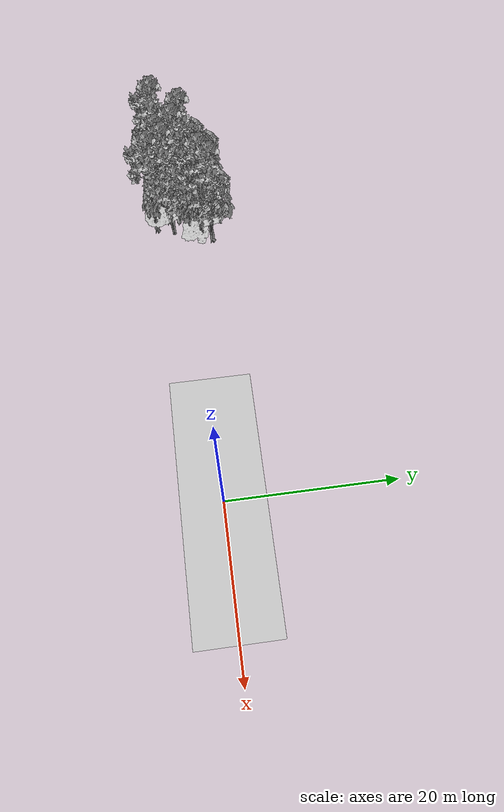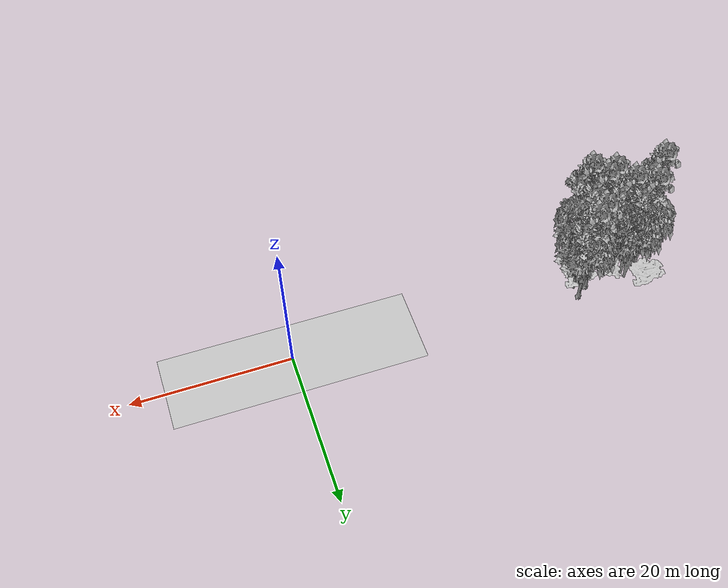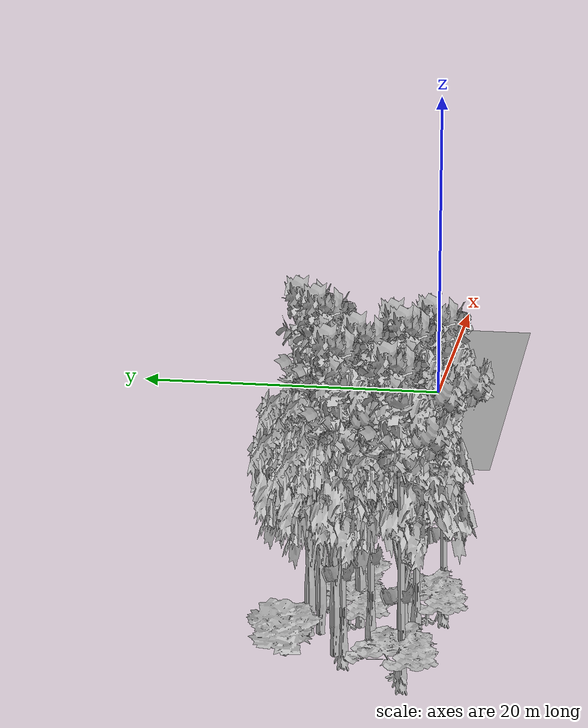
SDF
<sdf version="1.7">
 <world name="default">
  <model name="ground_plane">
   <static>1</static>
   <link name="link">
    <collision name="collision">
     <pose>-50 0 0 0 -0 0</pose>
     <geometry><plane><normal>0 0 1</normal><size>100 100</size></plane></geometry>
     <surface><contact><ode><min_depth>0.01</min_depth><max_vel>0</max_vel></ode></contact></surface>
    </collision>
    <visual name="grass">
     <cast_shadows>0</cast_shadows>
     <geometry>
      <mesh>
       <scale>0.5814285714285714 0.18142857142857144 0.1</scale>
       <uri>file://grass_plane/meshes/grass_plane.dae</uri>
      </mesh>
     </geometry>
    </visual>
   </link>
  </model>
  <model name="Tree 6">
   <static>1</static>
   <pose>-37.887973601087715 1.3199146387458143 0 1.57079 -0 0</pose>
   <link name="link">
    <collision name="collision">
     <geometry><mesh><scale>3.5 5 3.5</scale><uri>model://tree_2/meshes/tree_2.obj</uri></mesh></geometry>
    </collision>
    <visual name="visual">
     <geometry><mesh><scale>3.5 5 3.5</scale><uri>model://tree_2/meshes/tree_2.obj</uri></mesh></geometry>
    </visual>
   </link>
  </model>
  <model name="Tree 31">
   <static>1</static>
   <pose>-43.290989155444414 1.189740722010601 0 1.57079 -0 0</pose>
   <link name="link">
    <collision name="collision">
     <geometry><mesh><scale>3.5 5 3.5</scale><uri>model://tree_2/meshes/tree_2.obj</uri></mesh></geometry>
    </collision>
    <visual name="visual">
     <geometry><mesh><scale>3.5 5 3.5</scale><uri>model://tree_2/meshes/tree_2.obj</uri></mesh></geometry>
    </visual>
   </link>
  </model>
  <model name="Tree 47">
   <static>1</static>
   <pose>-38.29400343661959 1.3634647451998596 0 1.57079 -0 0</pose>
   <link name="link">
    <collision name="collision">
     <geometry><mesh><scale>3.5 5 3.5</scale><uri>model://tree_9/meshes/tree_9.obj</uri></mesh></geometry>
    </collision>
    <visual name="visual">
     <geometry><mesh><scale>3.5 5 3.5</scale><uri>model://tree_9/meshes/tree_9.obj</uri></mesh></geometry>
    </visual>
   </link>
  </model>
  <model name="Tree 66">
   <static>1</static>
   <pose>-41.888041818027965 -3.5551852384522213 0 1.57079 -0 0</pose>
   <link name="link">
    <collision name="collision">
     <geometry><mesh><scale>3.5 5 3.5</scale><uri>model://tree_9/meshes/tree_9.obj</uri></mesh></geometry>
    </collision>
    <visual name="visual">
     <geometry><mesh><scale>3.5 5 3.5</scale><uri>model://tree_9/meshes/tree_9.obj</uri></mesh></geometry>
    </visual>
   </link>
  </model>
  <model name="Tree 94">
   <static>1</static>
   <pose>-48.39368440894646 -3.6012545829023885 0 1.57079 -0 0</pose>
   <link name="link">
    <collision name="collision">
     <geometry><mesh><scale>3.5 5 3.5</scale><uri>model://tree_9/meshes/tree_9.obj</uri></mesh></geometry>
    </collision>
    <visual name="visual">
     <geometry><mesh><scale>3.5 5 3.5</scale><uri>model://tree_9/meshes/tree_9.obj</uri></mesh></geometry>
    </visual>
   </link>
  </model>
  <model name="Tree 122">
   <static>1</static>
   <pose>-37.73329666970326 0.07648108124822883 0 1.57079 -0 0</pose>
   <link name="link">
    <collision name="collision">
     <geometry><mesh><scale>3 2 3</scale><uri>model://tree_3/meshes/tree_3.obj</uri></mesh></geometry>
    </collision>
    <visual name="visual">
     <geometry><mesh><scale>3 2 3</scale><uri>model://tree_3/meshes/tree_3.obj</uri></mesh></geometry>
    </visual>
   </link>
  </model>
  <model name="Tree 237">
   <static>1</static>
   <pose>-36.811732902429696 2.518052424741544 0 1.57079 -0 0</pose>
   <link name="link">
    <collision name="collision">
     <geometry><mesh><scale>3.5 5 3.5</scale><uri>model://tree_9/meshes/tree_9.obj</uri></mesh></geometry>
    </collision>
    <visual name="visual">
     <geometry><mesh><scale>3.5 5 3.5</scale><uri>model://tree_9/meshes/tree_9.obj</uri></mesh></geometry>
    </visual>
   </link>
  </model>
  <model name="Tree 245">
   <static>1</static>
   <pose>-46.04668598661531 0.04497765726208236 0 1.57079 -0 0</pose>
   <link name="link">
    <collision name="collision">
     <geometry><mesh><scale>3.5 5 3.5</scale><uri>model://tree_2/meshes/tree_2.obj</uri></mesh></geometry>
    </collision>
    <visual name="visual">
     <geometry><mesh><scale>3.5 5 3.5</scale><uri>model://tree_2/meshes/tree_2.obj</uri></mesh></geometry>
    </visual>
   </link>
  </model>
  <model name="Tree 247">
   <static>1</static>
   <pose>-39.41444467417304 -4.6869506630965 0 1.57079 -0 0</pose>
   <link name="link">
    <collision name="collision">
     <geometry><mesh><scale>3.5 5 3.5</scale><uri>model://tree_9/meshes/tree_9.obj</uri></mesh></geometry>
    </collision>
    <visual name="visual">
     <geometry><mesh><scale>3.5 5 3.5</scale><uri>model://tree_9/meshes/tree_9.obj</uri></mesh></geometry>
    </visual>
   </link>
  </model>
  <model name="Tree 254">
   <static>1</static>
   <pose>-36.77675199047252 1.221827557060955 0 1.57079 -0 0</pose>
   <link name="link">
    <collision name="collision">
     <geometry><mesh><scale>3.5 5 3.5</scale><uri>model://tree_2/meshes/tree_2.obj</uri></mesh></geometry>
    </collision>
    <visual name="visual">
     <geometry><mesh><scale>3.5 5 3.5</scale><uri>model://tree_2/meshes/tree_2.obj</uri></mesh></geometry>
    </visual>
   </link>
  </model>
  <model name="Tree 270">
   <static>1</static>
   <pose>-43.61109015363 1.7033768670879788 0 1.57079 -0 0</pose>
   <link name="link">
    <collision name="collision">
     <geometry><mesh><scale>3.5 5 3.5</scale><uri>model://tree_2/meshes/tree_2.obj</uri></mesh></geometry>
    </collision>
    <visual name="visual">
     <geometry><mesh><scale>3.5 5 3.5</scale><uri>model://tree_2/meshes/tree_2.obj</uri></mesh></geometry>
    </visual>
   </link>
  </model>
  <model name="Tree 290">
   <static>1</static>
   <pose>-43.39874230633518 -1.4171953327888218 0 1.57079 -0 0</pose>
   <link name="link">
    <collision name="collision">
     <geometry><mesh><scale>3.5 5 3.5</scale><uri>model://tree_9/meshes/tree_9.obj</uri></mesh></geometry>
    </collision>
    <visual name="visual">
     <geometry><mesh><scale>3.5 5 3.5</scale><uri>model://tree_9/meshes/tree_9.obj</uri></mesh></geometry>
    </visual>
   </link>
  </model>
  <model name="Tree 304">
   <static>1</static>
   <pose>-38.234874973432895 -2.4432896593487943 0 1.57079 -0 0</pose>
   <link name="link">
    <collision name="collision">
     <geometry><mesh><scale>3.5 5 3.5</scale><uri>model://tree_2/meshes/tree_2.obj</uri></mesh></geometry>
    </collision>
    <visual name="visual">
     <geometry><mesh><scale>3.5 5 3.5</scale><uri>model://tree_2/meshes/tree_2.obj</uri></mesh></geometry>
    </visual>
   </link>
  </model>
  <model name="Tree 323">
   <static>1</static>
   <pose>-45.98933967668304 2.575135953180368 0 1.57079 -0 0</pose>
   <link name="link">
    <collision name="collision">
     <geometry><mesh><scale>3 2 3</scale><uri>model://tree_3/meshes/tree_3.obj</uri></mesh></geometry>
    </collision>
    <visual name="visual">
     <geometry><mesh><scale>3 2 3</scale><uri>model://tree_3/meshes/tree_3.obj</uri></mesh></geometry>
    </visual>
   </link>
  </model>
  <model name="Tree 352">
   <static>1</static>
   <pose>-36.99148450877887 2.4423195842639096 0 1.57079 -0 0</pose>
   <link name="link">
    <collision name="collision">
     <geometry><mesh><scale>3.5 5 3.5</scale><uri>model://tree_2/meshes/tree_2.obj</uri></mesh></geometry>
    </collision>
    <visual name="visual">
     <geometry><mesh><scale>3.5 5 3.5</scale><uri>model://tree_2/meshes/tree_2.obj</uri></mesh></geometry>
    </visual>
   </link>
  </model>
  <model name="Tree 362">
   <static>1</static>
   <pose>-41.95352702738886 -0.08945312186084564 0 1.57079 -0 0</pose>
   <link name="link">
    <collision name="collision">
     <geometry><mesh><scale>4 2.5 4</scale><uri>model://tree_1/meshes/tree_1.obj</uri></mesh></geometry>
    </collision>
    <visual name="visual">
     <geometry><mesh><scale>4 2.5 4</scale><uri>model://tree_1/meshes/tree_1.obj</uri></mesh></geometry>
    </visual>
   </link>
  </model>
  <model name="Tree 367">
   <static>1</static>
   <pose>-41.68705369931218 0.6400933788597882 0 1.57079 -0 0</pose>
   <link name="link">
    <collision name="collision">
     <geometry><mesh><scale>3.5 5 3.5</scale><uri>model://tree_2/meshes/tree_2.obj</uri></mesh></geometry>
    </collision>
    <visual name="visual">
     <geometry><mesh><scale>3.5 5 3.5</scale><uri>model://tree_2/meshes/tree_2.obj</uri></mesh></geometry>
    </visual>
   </link>
  </model>
  <model name="Tree 370">
   <static>1</static>
   <pose>-46.27285854006902 -3.3829609261914655 0 1.57079 -0 0</pose>
   <link name="link">
    <collision name="collision">
     <geometry><mesh><scale>3.5 5 3.5</scale><uri>model://tree_2/meshes/tree_2.obj</uri></mesh></geometry>
    </collision>
    <visual name="visual">
     <geometry><mesh><scale>3.5 5 3.5</scale><uri>model://tree_2/meshes/tree_2.obj</uri></mesh></geometry>
    </visual>
   </link>
  </model>
  <model name="Tree 422">
   <static>1</static>
   <pose>-40.56073309121678 -2.9297747639131924 0 1.57079 -0 0</pose>
   <link name="link">
    <collision name="collision">
     <geometry><mesh><scale>3.5 5 3.5</scale><uri>model://tree_9/meshes/tree_9.obj</uri></mesh></geometry>
    </collision>
    <visual name="visual">
     <geometry><mesh><scale>3.5 5 3.5</scale><uri>model://tree_9/meshes/tree_9.obj</uri></mesh></geometry>
    </visual>
   </link>
  </model>
  <model name="Tree 464">
   <static>1</static>
   <pose>-40.60319072565969 -3.9817052516644065 0 1.57079 -0 0</pose>
   <link name="link">
    <collision name="collision">
     <geometry><mesh><scale>4 2.5 4</scale><uri>model://tree_1/meshes/tree_1.obj</uri></mesh></geometry>
    </collision>
    <visual name="visual">
     <geometry><mesh><scale>4 2.5 4</scale><uri>model://tree_1/meshes/tree_1.obj</uri></mesh></geometry>
    </visual>
   </link>
  </model>
  <model name="Tree 477">
   <static>1</static>
   <pose>-48.17579312635209 -3.3035262856420715 0 1.57079 -0 0</pose>
   <link name="link">
    <collision name="collision">
     <geometry><mesh><scale>4 2.5 4</scale><uri>model://tree_1/meshes/tree_1.obj</uri></mesh></geometry>
    </collision>
    <visual name="visual">
     <geometry><mesh><scale>4 2.5 4</scale><uri>model://tree_1/meshes/tree_1.obj</uri></mesh></geometry>
    </visual>
   </link>
  </model>
  <model name="Tree 492">
   <static>1</static>
   <pose>-45.82059819511943 -0.31327281125743767 0 1.57079 -0 0</pose>
   <link name="link">
    <collision name="collision">
     <geometry><mesh><scale>3.5 5 3.5</scale><uri>model://tree_9/meshes/tree_9.obj</uri></mesh></geometry>
    </collision>
    <visual name="visual">
     <geometry><mesh><scale>3.5 5 3.5</scale><uri>model://tree_9/meshes/tree_9.obj</uri></mesh></geometry>
    </visual>
   </link>
  </model>
  <model name="Tree 538">
   <static>1</static>
   <pose>-42.084728622665494 -0.6828994875505874 0 1.57079 -0 0</pose>
   <link name="link">
    <collision name="collision">
     <geometry><mesh><scale>3.5 5 3.5</scale><uri>model://tree_2/meshes/tree_2.obj</uri></mesh></geometry>
    </collision>
    <visual name="visual">
     <geometry><mesh><scale>3.5 5 3.5</scale><uri>model://tree_2/meshes/tree_2.obj</uri></mesh></geometry>
    </visual>
   </link>
  </model>
 </world>
</sdf>
